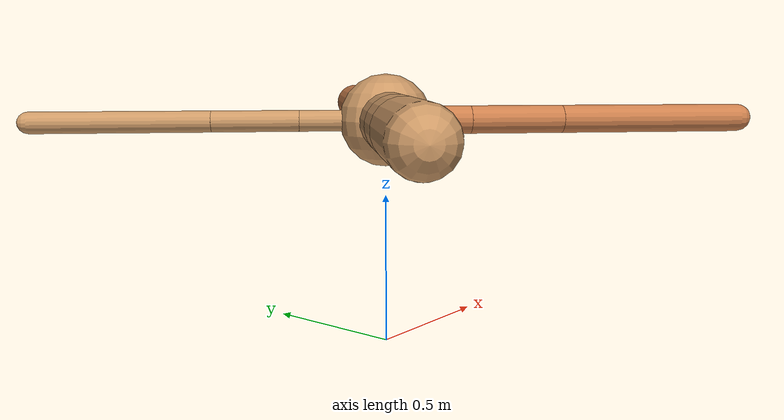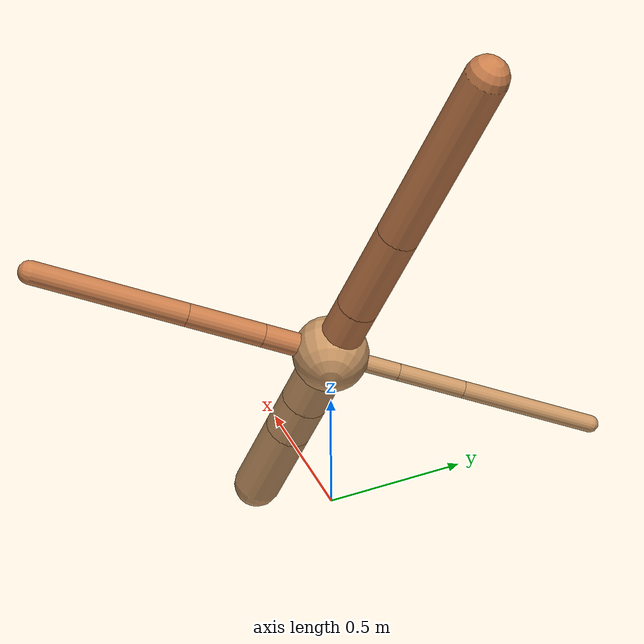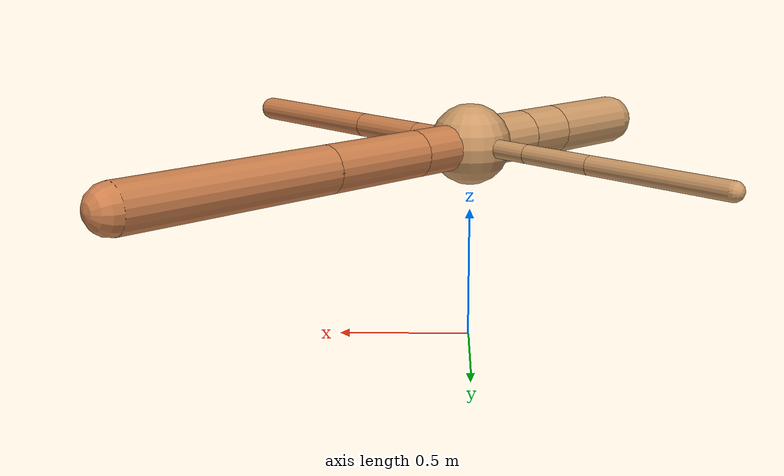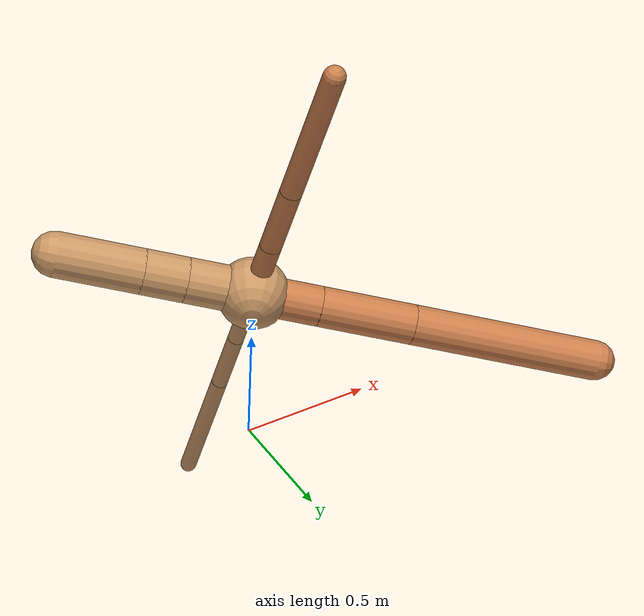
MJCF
<?xml version="1.0" ?>
<mujoco model="ant">

	<compiler angle="degree" coordinate="local" inertiafromgeom="true"/>

	<option integrator="RK4" timestep="0.01"/>

	<custom>

		<numeric data="0.0 0.0 0.55 1.0 0.0 0.0 0.0 0.0 1.0 0.0 -1.0 0.0 -1.0 0.0 1.0" name="init_qpos"/>

	</custom>

	<default>

		<joint armature="1" damping="1" limited="true"/>

		<geom conaffinity="0" condim="3" density="5.0" friction="1.5 0.1 0.1" margin="0.01" rgba="0.8 0.6 0.4 1"/>

	</default>

	<worldbody>

		<body name="torso" pos="0 0 0.75">

			<geom name="torso_geom" pos="0 0 0" size="0.15176809694626886" type="sphere"/>

			<!--joint armature="0" damping="0" limited="false" margin="0.01" name="root" pos="0 0 0" type="free"/-->

			<body name="front_left_leg" pos="0 0 0">

				<geom fromto="0 0 0 0.2 0.2 0" name="aux_1_geom" size="0.08456707139544144" type="capsule" rgba=".8 .5 .3 1"/>

				<body name="aux_1" pos="0.2 0.2 0">

					<joint axis="0 0 1" name="hip_1" pos="0.0 0.0 0.0" range="-40 40" type="hinge"/>

					<geom fromto="0 0 0 0.2847508216176598 0.2847508216176598 0" name="left_leg_geom" size="0.08456707139544144" type="capsule" rgba=".8 .5 .3 1"/>

					<body pos="0.2847508216176598 0.2847508216176598 0" name="front_left_foot">

						<joint axis="-1 1 0" name="ankle_1" pos="0.0 0.0 0.0" range="30 100" type="hinge"/>

						<geom fromto="0 0 0 0.5695016432353196 0.5695016432353196 0" name="left_ankle_geom" size="0.08456707139544144" type="capsule" rgba=".8 .5 .3 1"/>

					</body>

				</body>

			</body>

			<body name="front_right_leg" pos="0 0 0">

				<geom fromto="0 0 0 -0.2 0.2 0" name="aux_2_geom" size="0.03466710375082903" type="capsule"/>

				<body name="aux_2" pos="-0.2 0.2 0">

					<joint axis="0 0 1" name="hip_2" pos="0.0 0.0 0.0" range="-40 40" type="hinge"/>

					<geom fromto="0 0 0 -0.1975584380100507 0.1975584380100507 0" name="right_leg_geom" size="0.03466710375082903" type="capsule"/>

					<body pos="-0.1975584380100507 0.1975584380100507 0" name="front_right_foot">

						<joint axis="1 1 0" name="ankle_2" pos="0.0 0.0 0.0" range="-100 -30" type="hinge"/>

						<geom fromto="0 0 0 -0.3951168760201014 0.3951168760201014 0" name="right_ankle_geom" size="0.03466710375082903" type="capsule"/>

					</body>

				</body>

			</body>

			<body name="left_back_leg" pos="0 0 0">

				<geom fromto="0 0 0 -0.2 -0.2 0" name="aux_3_geom" size="0.09536157474816216" type="capsule"/>

				<body name="aux_3" pos="-0.2 -0.2 0">

					<joint axis="0 0 1" name="hip_3" pos="0.0 0.0 0.0" range="-40 40" type="hinge"/>

					<geom fromto="0 0 0 -0.12894735521949574 -0.12894735521949574 0" name="back_leg_geom" size="0.09536157474816216" type="capsule"/>

					<body pos="-0.12894735521949574 -0.12894735521949574 0" name="left_back_foot">

						<joint axis="-1 1 0" name="ankle_3" pos="0.0 0.0 0.0" range="-100 -30" type="hinge"/>

						<geom fromto="0 0 0 -0.2578947104389915 -0.2578947104389915 0" name="third_ankle_geom" size="0.09536157474816216" type="capsule"/>

					</body>

				</body>

			</body>

			<body name="right_back_leg" pos="0 0 0">

				<geom fromto="0 0 0 0.2 -0.2 0" name="aux_4_geom" size="0.046654953726801375" type="capsule" rgba=".8 .5 .3 1"/>

				<body name="aux_4" pos="0.2 -0.2 0">

					<joint axis="0 0 1" name="hip_4" pos="0.0 0.0 0.0" range="-40 40" type="hinge"/>

					<geom fromto="0 0 0 0.22132087481686524 -0.22132087481686524 0" name="rightback_leg_geom" size="0.046654953726801375" type="capsule" rgba=".8 .5 .3 1"/>

					<body pos="0.22132087481686524 -0.22132087481686524 0" name="right_back_foot">

						<joint axis="1 1 0" name="ankle_4" pos="0.0 0.0 0.0" range="30 100" type="hinge"/>

						<geom fromto="0 0 0 0.4426417496337305 -0.4426417496337305 0" name="fourth_ankle_geom" size="0.046654953726801375" type="capsule" rgba=".8 .5 .3 1"/>

					</body>

				</body>

			</body>

		</body>

	</worldbody>

	<actuator>

		<motor ctrllimited="true" ctrlrange="-1.0 1.0" joint="hip_4" gear="150"/>

		<motor ctrllimited="true" ctrlrange="-1.0 1.0" joint="ankle_4" gear="150"/>

		<motor ctrllimited="true" ctrlrange="-1.0 1.0" joint="hip_1" gear="150"/>

		<motor ctrllimited="true" ctrlrange="-1.0 1.0" joint="ankle_1" gear="150"/>

		<motor ctrllimited="true" ctrlrange="-1.0 1.0" joint="hip_2" gear="150"/>

		<motor ctrllimited="true" ctrlrange="-1.0 1.0" joint="ankle_2" gear="150"/>

		<motor ctrllimited="true" ctrlrange="-1.0 1.0" joint="hip_3" gear="150"/>

		<motor ctrllimited="true" ctrlrange="-1.0 1.0" joint="ankle_3" gear="150"/>

	</actuator>

</mujoco>
